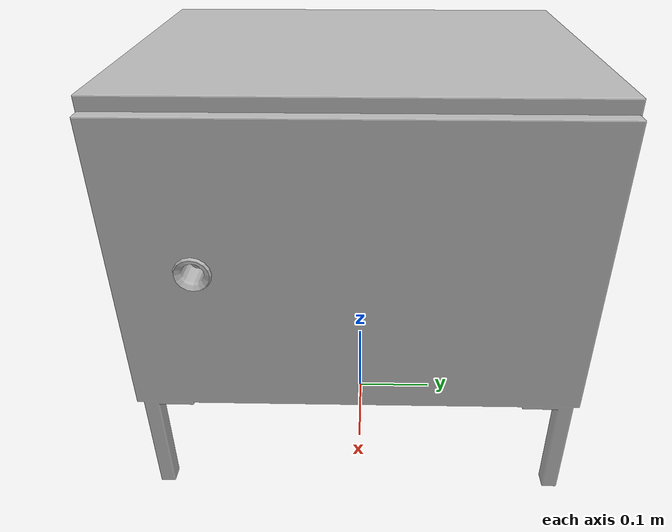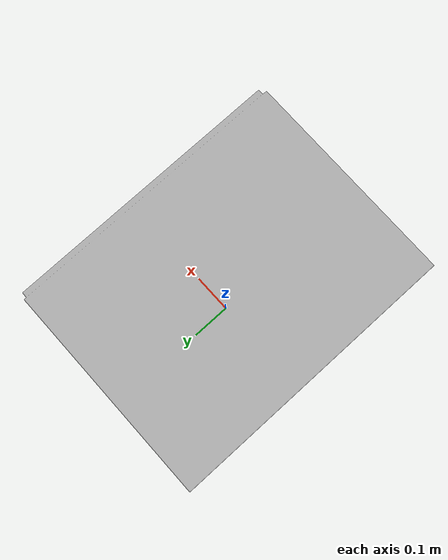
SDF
<?xml version='1.0'?>
<sdf version='1.4'>
  <model name='147'>
    <pose>0 0 0 0 0 0</pose>
    <static>true</static>
    <link name='link'>
      <collision name='collision'>
        <pose>0 0 0 0 0 0</pose>
        <geometry>
          <box>
            <size>0.39891 0.5 2</size>
          </box>
        </geometry>
      </collision>
      <visual name='visual'>
        <pose>0 0 0 0 0 0</pose>
        <geometry>
          <mesh><uri>model://147/147.dae</uri></mesh>
        </geometry>
      </visual>
    </link>
  </model>
</sdf>
